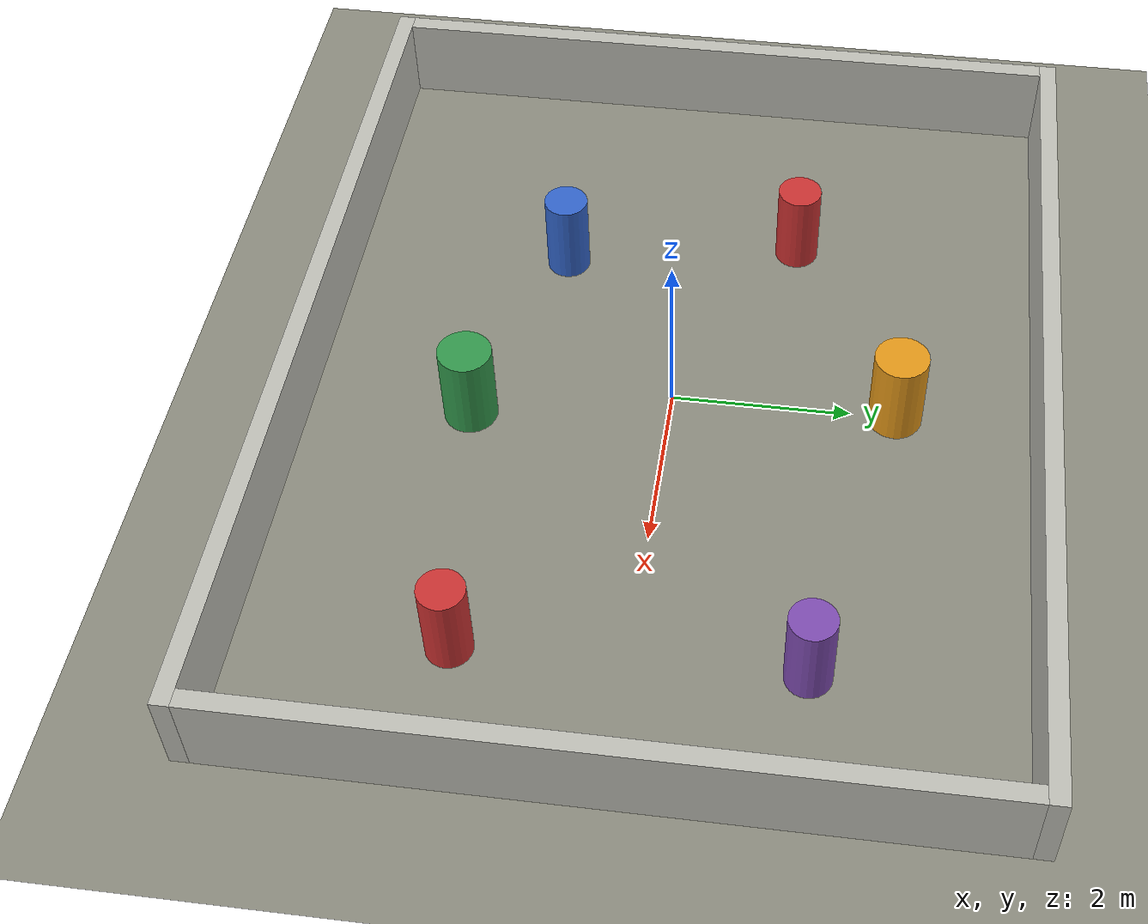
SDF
<?xml version="1.0"?>
<sdf version="1.8">
  <world name="arena">
    <physics type="ode">
      <real_time_update_rate>1000.0</real_time_update_rate>
      <max_step_size>0.001</max_step_size>
      <real_time_factor>1</real_time_factor>
    </physics>
    <plugin filename="gz-sim-physics-system" name="gz::sim::systems::Physics"/>
    <plugin filename="gz-sim-user-commands-system" name="gz::sim::systems::UserCommands"/>
    <plugin filename="gz-sim-scene-broadcaster-system" name="gz::sim::systems::SceneBroadcaster"/>
    <plugin filename="gz-sim-sensors-system" name="gz::sim::systems::Sensors">
      <render_engine>ogre2</render_engine>
    </plugin>
    <plugin filename="gz-sim-imu-system" name="gz::sim::systems::Imu"/>

    <scene>
      <ambient>0.6 0.6 0.6 1</ambient>
      <background>0.7 0.8 0.9 1</background>
      <shadows>true</shadows>
    </scene>

    <light type="directional" name="sun">
      <cast_shadows>true</cast_shadows>
      <pose>0 0 10 0 0 0</pose>
      <diffuse>0.8 0.8 0.8 1</diffuse>
      <specular>0.2 0.2 0.2 1</specular>
      <direction>-0.4 0.2 -0.9</direction>
    </light>

    <model name="ground_plane">
      <static>true</static>
      <link name="link">
        <collision name="collision">
          <geometry>
            <plane>
              <normal>0 0 1</normal>
              <size>30 30</size>
            </plane>
          </geometry>
          <!-- Same friction as the Fuel ground plane used by the stock
               TurtleBot3 worlds; with the default (mu = 1) the wheels slip in
               turns and odometry drifts. -->
          <surface>
            <friction>
              <ode>
                <mu>100</mu>
                <mu2>50</mu2>
              </ode>
            </friction>
          </surface>
        </collision>
        <visual name="visual">
          <geometry>
            <plane>
              <normal>0 0 1</normal>
              <size>30 30</size>
            </plane>
          </geometry>
          <material>
            <ambient>0.55 0.55 0.5 1</ambient>
            <diffuse>0.55 0.55 0.5 1</diffuse>
          </material>
        </visual>
      </link>
    </model>

    <model name="wall_north">
      <static>true</static>
      <pose>0 4.1 0.5 0 0 0</pose>
      <link name="link">
        <collision name="collision">
          <geometry>
            <box>
              <size>10.4 0.2 1.0</size>
            </box>
          </geometry>
        </collision>
        <visual name="visual">
          <geometry>
            <box>
              <size>10.4 0.2 1.0</size>
            </box>
          </geometry>
          <material>
            <ambient>0.75 0.75 0.72 1</ambient>
            <diffuse>0.75 0.75 0.72 1</diffuse>
          </material>
        </visual>
      </link>
    </model>

    <model name="wall_south">
      <static>true</static>
      <pose>0 -4.1 0.5 0 0 0</pose>
      <link name="link">
        <collision name="collision">
          <geometry>
            <box>
              <size>10.4 0.2 1.0</size>
            </box>
          </geometry>
        </collision>
        <visual name="visual">
          <geometry>
            <box>
              <size>10.4 0.2 1.0</size>
            </box>
          </geometry>
          <material>
            <ambient>0.75 0.75 0.72 1</ambient>
            <diffuse>0.75 0.75 0.72 1</diffuse>
          </material>
        </visual>
      </link>
    </model>

    <model name="wall_east">
      <static>true</static>
      <pose>5.1 0 0.5 0 0 0</pose>
      <link name="link">
        <collision name="collision">
          <geometry>
            <box>
              <size>0.2 8.0 1.0</size>
            </box>
          </geometry>
        </collision>
        <visual name="visual">
          <geometry>
            <box>
              <size>0.2 8.0 1.0</size>
            </box>
          </geometry>
          <material>
            <ambient>0.75 0.75 0.72 1</ambient>
            <diffuse>0.75 0.75 0.72 1</diffuse>
          </material>
        </visual>
      </link>
    </model>

    <model name="wall_west">
      <static>true</static>
      <pose>-5.1 0 0.5 0 0 0</pose>
      <link name="link">
        <collision name="collision">
          <geometry>
            <box>
              <size>0.2 8.0 1.0</size>
            </box>
          </geometry>
        </collision>
        <visual name="visual">
          <geometry>
            <box>
              <size>0.2 8.0 1.0</size>
            </box>
          </geometry>
          <material>
            <ambient>0.75 0.75 0.72 1</ambient>
            <diffuse>0.75 0.75 0.72 1</diffuse>
          </material>
        </visual>
      </link>
    </model>

    <model name="cylinder_1">
      <static>true</static>
      <pose>-2.5 1.2 0.5 0 0 0</pose>
      <link name="link">
        <collision name="collision">
          <geometry>
            <cylinder>
              <radius>0.25</radius>
              <length>1.0</length>
            </cylinder>
          </geometry>
        </collision>
        <visual name="visual">
          <geometry>
            <cylinder>
              <radius>0.25</radius>
              <length>1.0</length>
            </cylinder>
          </geometry>
          <material>
            <ambient>0.8 0.2 0.2 1</ambient>
            <diffuse>0.8 0.2 0.2 1</diffuse>
          </material>
        </visual>
      </link>
    </model>

    <model name="cylinder_2">
      <static>true</static>
      <pose>-2.0 -1.5 0.5 0 0 0</pose>
      <link name="link">
        <collision name="collision">
          <geometry>
            <cylinder>
              <radius>0.25</radius>
              <length>1.0</length>
            </cylinder>
          </geometry>
        </collision>
        <visual name="visual">
          <geometry>
            <cylinder>
              <radius>0.25</radius>
              <length>1.0</length>
            </cylinder>
          </geometry>
          <material>
            <ambient>0.2 0.4 0.8 1</ambient>
            <diffuse>0.2 0.4 0.8 1</diffuse>
          </material>
        </visual>
      </link>
    </model>

    <model name="cylinder_3">
      <static>true</static>
      <pose>0.0 2.5 0.5 0 0 0</pose>
      <link name="link">
        <collision name="collision">
          <geometry>
            <cylinder>
              <radius>0.3</radius>
              <length>1.0</length>
            </cylinder>
          </geometry>
        </collision>
        <visual name="visual">
          <geometry>
            <cylinder>
              <radius>0.3</radius>
              <length>1.0</length>
            </cylinder>
          </geometry>
          <material>
            <ambient>0.9 0.6 0.1 1</ambient>
            <diffuse>0.9 0.6 0.1 1</diffuse>
          </material>
        </visual>
      </link>
    </model>

    <model name="cylinder_4">
      <static>true</static>
      <pose>0.5 -2.2 0.5 0 0 0</pose>
      <link name="link">
        <collision name="collision">
          <geometry>
            <cylinder>
              <radius>0.3</radius>
              <length>1.0</length>
            </cylinder>
          </geometry>
        </collision>
        <visual name="visual">
          <geometry>
            <cylinder>
              <radius>0.3</radius>
              <length>1.0</length>
            </cylinder>
          </geometry>
          <material>
            <ambient>0.2 0.6 0.3 1</ambient>
            <diffuse>0.2 0.6 0.3 1</diffuse>
          </material>
        </visual>
      </link>
    </model>

    <model name="cylinder_5">
      <static>true</static>
      <pose>3.5 1.8 0.5 0 0 0</pose>
      <link name="link">
        <collision name="collision">
          <geometry>
            <cylinder>
              <radius>0.25</radius>
              <length>1.0</length>
            </cylinder>
          </geometry>
        </collision>
        <visual name="visual">
          <geometry>
            <cylinder>
              <radius>0.25</radius>
              <length>1.0</length>
            </cylinder>
          </geometry>
          <material>
            <ambient>0.5 0.3 0.7 1</ambient>
            <diffuse>0.5 0.3 0.7 1</diffuse>
          </material>
        </visual>
      </link>
    </model>

    <model name="cylinder_6">
      <static>true</static>
      <pose>3.6 -1.8 0.5 0 0 0</pose>
      <link name="link">
        <collision name="collision">
          <geometry>
            <cylinder>
              <radius>0.25</radius>
              <length>1.0</length>
            </cylinder>
          </geometry>
        </collision>
        <visual name="visual">
          <geometry>
            <cylinder>
              <radius>0.25</radius>
              <length>1.0</length>
            </cylinder>
          </geometry>
          <material>
            <ambient>0.8 0.2 0.2 1</ambient>
            <diffuse>0.8 0.2 0.2 1</diffuse>
          </material>
        </visual>
      </link>
    </model>

    <!-- HUMANS -->
  </world>
</sdf>
